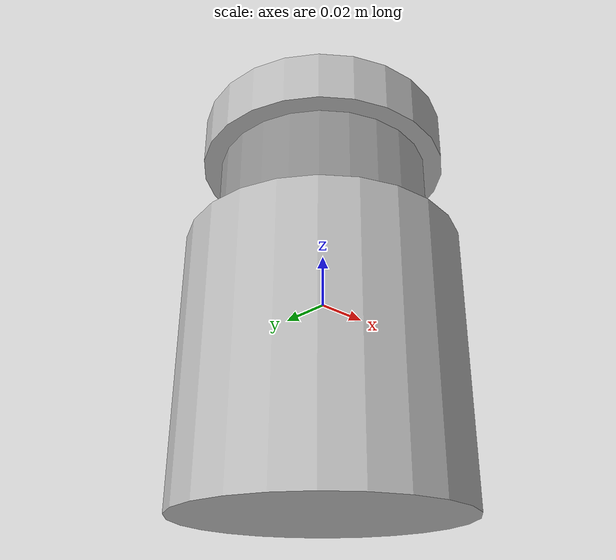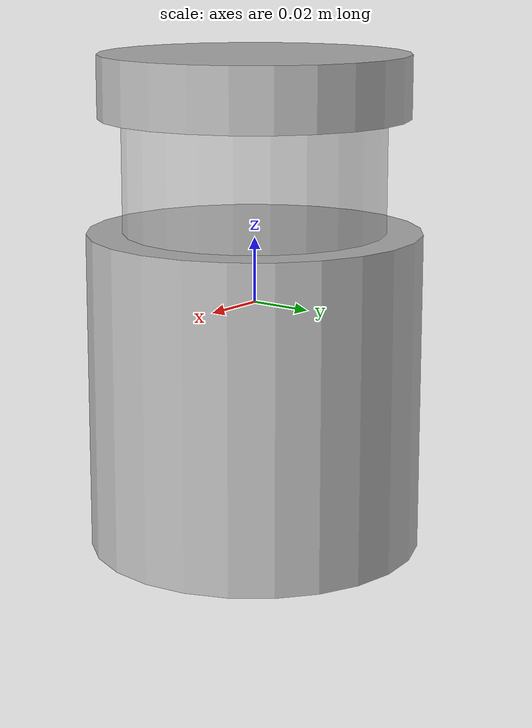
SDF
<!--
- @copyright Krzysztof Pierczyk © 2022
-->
<?xml version="1.0" ?>
<sdf version="1.7">
    <model name="lidar">

        <!-- ======================================================= Model ======================================================= -->

        <!-- Sensor's base -->
        <link name="base">

            <!-- Pose -->
            <pose>0 0 0 0 0 0</pose>

            <!-- Physical properties -->
            <inertial>
				<mass>1.1</mass>
				<inertia>
					<ixx>0.00283314166</ixx>
					<ixy>0</ixy>
					<ixz>0</ixz>
					<iyy>0.00283314166</iyy>
					<iyz>0</iyz>
					<izz>0.00143055</izz>
				</inertia>
			</inertial>
            <collision name="base_collision">
				<pose>0 0 0 0 0 0</pose>
                <geometry>
					<cylinder>
						<radius>0.051</radius>
						<length>0.152</length>
					</cylinder>
                </geometry>
            </collision>

            <!-- Visual geometry -->
			<visual name="base_visual">
				<pose>0 0 -0.027 0 0 0</pose>
				<geometry>
					<cylinder>
						<radius>0.051</radius>
						<length>0.098</length>
					</cylinder>
				</geometry>
				<material>
					<script>
						<uri>file://materials/scripts/lidar.material</uri>
						<name>lidar/base</name>
					</script>
				</material>
			</visual>
			<visual name="hat_visual">
				<pose>0 0 0.066 0 0 0</pose>
				<geometry>
					<cylinder>
						<radius>0.047</radius>
						<length>0.019</length>
					</cylinder>
				</geometry>
				<material>
					<script>
						<uri>file://materials/scripts/lidar.material</uri>
						<name>lidar/base</name>
					</script>
				</material>
			</visual>

        </link>

        <!-- Sensor's core -->
		<link name="core">

            <!-- Pose -->
			<pose>0 0 0.039 0 0 0</pose>

            <!-- Physical properties -->
			<inertial>
				<mass>0.05</mass>
				<inertia>
					<ixx>0.0000008333</ixx>
					<ixy>0</ixy>
					<ixz>0</ixz>
					<iyy>0.0000008333</iyy>
					<iyz>0</iyz>
					<izz>0.0000008333</izz>
				</inertia>
			</inertial>

            <!-- Visual geometry -->
			<visual name="glass_visual">
				<geometry>
					<cylinder>
						<radius>0.040</radius>
						<length>0.040</length>
					</cylinder>
				</geometry>
				<material>
					<script>
						<uri>file://materials/scripts/lidar.material</uri>
						<name>lidar/glass</name>
					</script>
				</material>
			</visual>

            <!-- Sensorical model (Mode: 50Hz, 270°, sample each 0,5°) -->
			<sensor name="lidar" type="ray">
				<plugin name="lidar" filename="liblidar_gazebo.so"/>
				<visualize>false</visualize>
				<update_rate>50</update_rate>
				<ray>
					<scan>
						<horizontal>
							<samples>540</samples>
							<resolution>1</resolution>
							<min_angle>-0.7853982</min_angle>
							<max_angle>3.926991</max_angle>
						</horizontal>
					</scan>
					<range>
						<min>0.06</min>
						<max>20</max>
						<!-- @todo: add linear resolution (?) -->
					</range>
					<noise>
						<type>gaussian</type>
						<mean>0.0</mean>
						<stddev>0.012</stddev>
					</noise>
				</ray>
			</sensor>

		</link>

        <!-- Link's joint -->
		<joint name="core_fix" type="fixed">
			<parent>base</parent>
			<child>core</child>
		</joint>

    </model>
</sdf>
